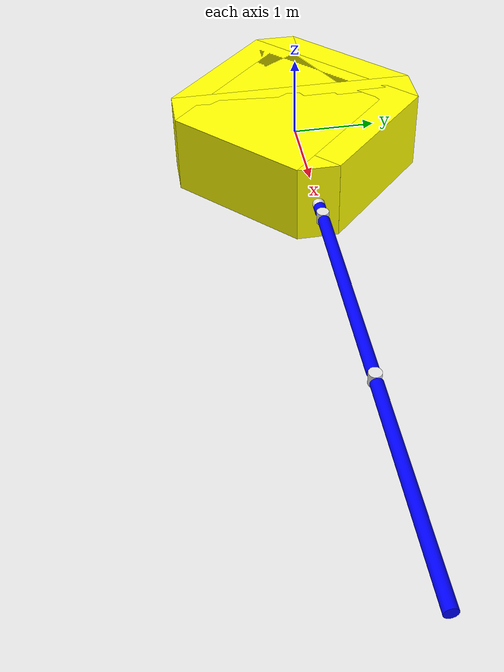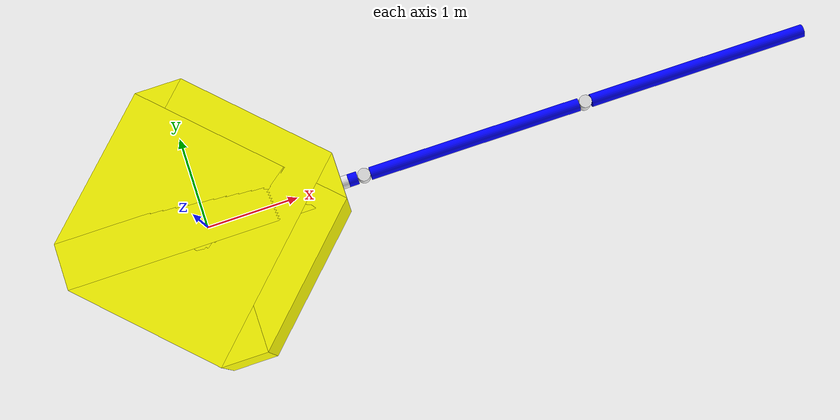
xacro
<?xml version="1.0"?>
<robot xmlns:sensor="http://playerstage.sourceforge.net/gazebo/xmlschema/#sensor"
       xmlns:controller="http://playerstage.sourceforge.net/gazebo/xmlschema/#controller"
       xmlns:interface="http://playerstage.sourceforge.net/gazebo/xmlschema/#interface"
       xmlns:xacro="http://ros.org/wiki/xacro"
       name="chaser"
>
  <!-- include macros -->
  <xacro:include filename="$(find getit_robot_gazebo)/urdf/chaser/common.xacro" />
  <xacro:include filename="$(find getit_robot_gazebo)/urdf/chaser/properties.urdf.xacro" />
  <xacro:include filename="$(find getit_robot_gazebo)/urdf/chaser/base/base.urdf.xacro" />
  <xacro:include filename="$(find getit_robot_gazebo)/urdf/chaser/arm/arm.urdf.xacro" />
  <xacro:include filename="$(find getit_robot_gazebo)/urdf/chaser/base_sub/base_sub.urdf.xacro" />

  <!-- compostion of the robot -->
  <xacro:base name="base"/>
  <xacro:arm name="arm" parent="base_link"/>
  <xacro:base_sub name="base_sub" parent="base_link"/>

  <!-- define color -->
  <material name="red">
    <color rgba="1.0 0.0 0.0 1.0"/>
  </material>

  <material name="blue">
    <color rgba="0.0 0.0 1.0 1.0"/>
  </material>

  <material name="yellow">
    <color rgba="1.0 1.0 0.0 1.0"/>
  </material>

  <material name="gray">
    <color rgba="0.9 0.9 0.9 1.0"/>
  </material>

</robot>

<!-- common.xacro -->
<robot xmlns:sensor="http://playerstage.sourceforge.net/gazebo/xmlschema/#sensor"
       xmlns:controller="http://playerstage.sourceforge.net/gazebo/xmlschema/#controller"
       xmlns:interface="http://playerstage.sourceforge.net/gazebo/xmlschema/#interface"
       xmlns:xacro="http://ros.org/wiki/xacro"
>

  <!-- common properties -->
  <xacro:property name="PI" value="3.1415926535897931"/>

  <!-- see https://secure.wikimedia.org/wikipedia/en/wiki/List_of_moment_of_inertia_tensors -->
  <xacro:macro name="sphere_inertial" params="radius mass *origin">
    <inertial>
      <mass value="${mass}" />
      <xacro:insert_block name="origin" />
      <inertia ixx="${0.4 * mass * radius * radius}" ixy="0.0" ixz="0.0"
        iyy="${0.4 * mass * radius * radius}" iyz="0.0"
        izz="${0.4 * mass * radius * radius}" />
    </inertial>
  </xacro:macro>

  <xacro:macro name="cylinder_inertial" params="radius length mass *origin">
    <inertial>
      <mass value="${mass}" />
      <xacro:insert_block name="origin" />
      <inertia ixx="${0.0833333 * mass * (3 * radius * radius + length * length)}" ixy="0.0" ixz="0.0"
        iyy="${0.0833333 * mass * (3 * radius * radius + length * length)}" iyz="0.0"
        izz="${0.5 * mass * radius * radius}" />
    </inertial>
  </xacro:macro>

  <xacro:macro name="box_inertial" params="x y z mass *origin">
    <inertial>
      <mass value="${mass}" />
      <xacro:insert_block name="origin" />
      <inertia ixx="${0.0833333 * mass * (y*y + z*z)}" ixy="0.0" ixz="0.0"
        iyy="${0.0833333 * mass * (x*x + z*z)}" iyz="0.0"
        izz="${0.0833333 * mass * (x*x + y*y)}" />
    </inertial>
  </xacro:macro>

  <xacro:macro name="spherical_cap_inertial" params="r h mass *origin">
    <inertial>
      <mass value="${mass}" />
      <xacro:insert_block name="origin" />
      <inertia ixx="${(-3*h*h*h/20+3*h*h*r/4-4*h*r*r/3+r*r*r)*3*mass/(3*r-h)+(3/4*(h-2*r)*(h-2*r)/(3*r-h))*(3/4*(h-2*r)*(h-2*r)/(3*r-h))}" ixy="0.0" ixz="0.0"
        iyy="${(-3*h*h*h/20+3*h*h*r/4-4*h*r*r/3+r*r*r)*3*mass/(3*r-h)+(3/4*(h-2*r)*(h-2*r)/(3*r-h))*(3/4*(h-2*r)*(h-2*r)/(3*r-h))}" iyz="0.0"
        izz="${mass*h/(10*(3*r-h))*(3*h*h-15*h*r+20*r*r)}" />
      <origin></origin>
    </inertial>
  </xacro:macro>

  <xacro:macro name="hollow_spherical_cap_inertial" params="r h t mass *origin">
    <inertial>
      <mass value="${mass}" />
      <xacro:insert_block name="origin" />
      <inertia ixx="${mass/20*(20*h*h*h*r-10*h*h*h*t-60*h*h*r*r+30*h*h*r*t+120*h*r*r*r-120*h*r*r*t+60*h*r*t*t-15*h*t*t*t-60*r*r*r*t+100*r*r*t*t-65*r*t*t*t+16*t*t*t*t)/(2*t*t*-3*r*t-3*h*t+6*h*r)+(3/4*(t-2*r)*(2*r*r-4*r*r+2*r*t-t*t)/(6*r*r-3*r*t-3*r*t+2*t*t))*(3/4*(t-2*r)*(2*r*r-4*r*r+2*r*t-t*t)/(6*r*r-3*r*t-3*r*t+2*t*t))}" ixy="0.0" ixz="0.0"
        iyy="${mass/20*(20*h*h*h*r-10*h*h*h*t-60*h*h*r*r+30*h*h*r*t+120*h*r*r*r-120*h*r*r*t+60*h*r*t*t-15*h*t*t*t-60*r*r*r*t+100*r*r*t*t-65*r*t*t*t+16*t*t*t*t)/(2*t*t*-3*r*t-3*h*t+6*h*r)+(3/4*(t-2*r)*(2*r*r-4*r*r+2*r*t-t*t)/(6*r*r-3*r*t-3*r*t+2*t*t))*(3/4*(t-2*r)*(2*r*r-4*r*r+2*r*t-t*t)/(6*r*r-3*r*t-3*r*t+2*t*t))}" iyz="0.0"
        izz="${mass/(10*(2*t*t-3*r*t-3*h*t+6*h*r))*(-20*h*h*h*r+10*h*h*h*t+60*h*h*r*r-30*h*h*r*t-60*h*r*r*t+60*h*r*t*t-15*h*t*t*t+20*r*r*t*t-25*r*t*t*t+8*t*t*t*t)}" />
    </inertial>
  </xacro:macro>

  <xacro:macro name="default_inertial">
    <inertial>
      <mass value="0.01"/>
      <origin xyz="0 0 0"/>
      <inertia ixx="0.001" ixy="0.0" ixz="0.0" iyy="0.001" iyz="0.0" izz="0.001" />
    </inertial>
  </xacro:macro>
</robot>

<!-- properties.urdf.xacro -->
<robot xmlns:sensor="http://playerstage.sourceforge.net/gazebo/xmlschema/#sensor"
       xmlns:controller="http://playerstage.sourceforge.net/gazebo/xmlschema/#controller"
       xmlns:interface="http://playerstage.sourceforge.net/gazebo/xmlschema/#interface"
       xmlns:xacro="http://ros.org/wiki/xacro"
>
  <!-- include common properties -->
  <xacro:include filename="$(find getit_robot_gazebo)/urdf/chaser/common.xacro" />

  <!-- topic properties -->
  <xacro:property name="chaser_cog_topic" value="/Robot_1/pose"/>

  <!-- base properties -->
  <xacro:property name="base_x_length" value="3.0"/>
  <xacro:property name="base_y_length" value="0.4998"/>
  <xacro:property name="base_z_length" value="1.0"/>
  <xacro:property name="base_mass" value="2000.0"/>
  <xacro:property name="base_inertia_lx" value="1400.0"/>
  <xacro:property name="base_inertia_ly" value="1400.0"/>
  <xacro:property name="base_inertia_lz" value="2040.0"/>

  <!-- arm link1 properties -->
  <xacro:property name="arm_link1_length" value="0.25"/>
  <xacro:property name="arm_link1_radius" value="0.07"/>
  <xacro:property name="arm_link1_mass" value="20.0"/>
  <xacro:property name="arm_link1_inertia_lx" value="0.10"/>
  <xacro:property name="arm_link1_inertia_ly" value="0.10"/>
  <xacro:property name="arm_link1_inertia_lz" value="0.10"/>

  <!-- arm link2 properties -->
  <xacro:property name="arm_link2_length" value="2.5"/>
  <xacro:property name="arm_link2_radius" value="0.07"/>
  <xacro:property name="arm_link2_mass" value="50.0"/>
  <xacro:property name="arm_link2_inertia_lx" value="26.0"/>
  <xacro:property name="arm_link2_inertia_ly" value="26.0"/>
  <xacro:property name="arm_link2_inertia_lz" value="0.25"/>

  <!-- arm link3 properties -->
  <xacro:property name="arm_link3_length" value="2.5"/>
  <xacro:property name="arm_link3_radius" value="0.07"/>
  <xacro:property name="arm_link3_mass" value="50.0"/>
  <xacro:property name="arm_link3_inertia_lx" value="26.0"/>
  <xacro:property name="arm_link3_inertia_ly" value="26.0"/>
  <xacro:property name="arm_link3_inertia_lz" value="0.25"/>

  <!-- arm joint properties -->
  <xacro:property name="arm_joint_link_length" value="0.15"/>
  <xacro:property name="arm_joint_link_radius" value="0.07"/>

  <!-- arm initial position -->
  <xacro:property name="arm_joint_1_position" value="0"/>
  <xacro:property name="arm_joint_2_position" value="${PI*3.0/4.0}"/>
  <xacro:property name="arm_joint_3_position" value="${PI/2.0}"/>

  <!-- arm limit position -->
  <xacro:property name="arm_joint2_limit_lower" value="${-PI*3.0/4.0}"/>
  <xacro:property name="arm_joint2_limit_upper" value="${PI*3.0/4.0}"/>
  <xacro:property name="arm_joint3_limit_lower" value="${-PI/2.0}"/>
  <xacro:property name="arm_joint3_limit_upper" value="${PI/2.0}"/>
  <xacro:property name="arm_joint_limit_effort" value="100"/>
  <xacro:property name="arm_joint_limit_velocity" value="100"/>

</robot>

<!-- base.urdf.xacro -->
<robot xmlns:sensor="http://playerstage.sourceforge.net/gazebo/xmlschema/#sensor"
       xmlns:controller="http://playerstage.sourceforge.net/gazebo/xmlschema/#controller"
       xmlns:interface="http://playerstage.sourceforge.net/gazebo/xmlschema/#interface"
       xmlns:xacro="http://ros.org/wiki/xacro"
>
  <xacro:include filename="$(find getit_robot_gazebo)/urdf/chaser/common.xacro" />
  <xacro:include filename="$(find getit_robot_gazebo)/urdf/chaser/properties.urdf.xacro" />
  <xacro:include filename="$(find getit_robot_gazebo)/urdf/chaser/base/base.gazebo.xacro" />
  <xacro:include filename="$(find getit_robot_gazebo)/urdf/chaser/base/base.transmission.xacro" />

  <!-- Base Link -->
  <xacro:macro name="base" params="name">
    <link name="${name}_link">
      <visual>
        <origin xyz="0 0 0" rpy="0 0 0"/>
        <geometry>
          <box size="${base_x_length} ${base_y_length} ${base_z_length}"/>
        </geometry>
        <material name="yellow"/>
      </visual>
      <collision>
        <origin xyz="0 0 0" rpy="0 0 0"/>
        <geometry>
          <box size="${base_x_length} ${base_y_length} ${base_z_length}"/>
        </geometry>
      </collision>
      <inertial>
        <mass value="${base_mass}"/>
        <origin xyz="0.0 0.0 0.0"/>
        <inertia ixx="${base_inertia_lx}" ixy="0.0" ixz="0.0"
             iyy="${base_inertia_ly}" iyz="0.0"
             izz="${base_inertia_lz}"/>
      </inertial>
    </link>

    <xacro:base_link_gazebo name="${name}_link"/>

    <!-- Chaser Controller -->
    <xacro:chaser_controller robot_name="chaser"/>

    <!-- CoG Pose Publisher -->
    <xacro:cog_pose_publisher robot_name="chaser" topic_name="${chaser_cog_topic}" link_name="${name}_link"/>

  </xacro:macro>
</robot>

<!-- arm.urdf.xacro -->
<robot xmlns:sensor="http://playerstage.sourceforge.net/gazebo/xmlschema/#sensor"
       xmlns:controller="http://playerstage.sourceforge.net/gazebo/xmlschema/#controller"
       xmlns:interface="http://playerstage.sourceforge.net/gazebo/xmlschema/#interface"
       xmlns:xacro="http://ros.org/wiki/xacro"
>
  <!-- include macros -->
  <xacro:include filename="$(find getit_robot_gazebo)/urdf/chaser/common.xacro" />
  <xacro:include filename="$(find getit_robot_gazebo)/urdf/chaser/properties.urdf.xacro" />
  <xacro:include filename="$(find getit_robot_gazebo)/urdf/chaser/arm/arm.gazebo.xacro" />
  <xacro:include filename="$(find getit_robot_gazebo)/urdf/chaser/arm/arm.transmission.xacro" />

  <!-- include sensors -->
  <xacro:include filename="$(find getit_robot_gazebo)/urdf/chaser/sensors/ft_sensor.urdf.xacro" />

  <xacro:macro name="arm" params="name parent">

    <!-- arm link -->
    <xacro:arm_link1 name="${name}_1_link">
      <origin xyz="${arm_link1_length/2} 0 0" rpy="0 ${pi/2} 0"/>
    </xacro:arm_link1>

    <xacro:arm_link2 name="${name}_2_link">
      <origin xyz="${arm_link2_length/2} 0 0" rpy="0 ${pi/2} 0"/>
    </xacro:arm_link2>

    <xacro:arm_link3 name="${name}_3_link">
      <origin xyz="${arm_link3_length/2 + arm_joint_link_radius/2} 0 0" rpy="0 ${pi/2} 0"/>
    </xacro:arm_link3>

    <!-- joints for arm link -->
    <joint name="${name}_joint_1" type="continuous">
      <origin xyz="${base_x_length/2} 0 0" rpy="0 0 0"/>
      <parent link="${parent}"/>
      <child  link="${name}_1_link"/>
      <axis xyz="1 0 0"/>
    </joint>

    <joint name="${name}_joint_2" type="revolute">
      <origin xyz="${arm_link1_length} 0 0" rpy="0 0 0"/>
      <parent link="${name}_1_link"/>
      <child  link="${name}_2_link"/>
      <axis xyz="0 0 1"/>
      <limit lower="${arm_joint2_limit_lower}" upper="${arm_joint2_limit_upper}" effort="${arm_joint_limit_effort}" velocity="${arm_joint_limit_velocity}"/>
    </joint>

    <joint name="${name}_joint_3" type="revolute">
      <origin xyz="${arm_link2_length} 0 0" rpy="0 0 0"/>
      <parent link="${name}_2_link"/>
      <child  link="${name}_3_link"/>
      <axis xyz="0 0 1"/>
      <limit lower="${arm_joint3_limit_lower}" upper="${arm_joint3_limit_upper}" effort="${arm_joint_limit_effort}" velocity="${arm_joint_limit_velocity}"/>
    </joint>

    <!-- visualized joint links -->
    <xacro:arm_joint_link name="${name}_visualized_joint_1_link">
      <origin xyz="0 0 0" rpy="0 ${pi/2} 0"/>
    </xacro:arm_joint_link>

    <xacro:arm_joint_link name="${name}_visualized_joint_2_link">
      <origin xyz="0 0 0" rpy="0 ${pi} 0"/>
    </xacro:arm_joint_link>

    <xacro:arm_joint_link name="${name}_visualized_joint_3_link">
      <origin xyz="0 0 0" rpy="0 ${pi} 0"/>
    </xacro:arm_joint_link>

    <!-- joints for visualized joint link -->
    <joint name="${name}_visualized_joint_1" type="fixed">
      <origin xyz="${base_x_length/2} 0 0" rpy="0 0 0"/>
      <parent link="${parent}"/>
      <child  link="${name}_visualized_joint_1_link"/>
      <axis xyz="0 0 1"/>
    </joint>

    <joint name="${name}_visualized_joint_2" type="fixed">
      <origin xyz="${arm_link1_length} 0 0" rpy="0 0 0"/>
      <parent link="${name}_1_link"/>
      <child  link="${name}_visualized_joint_2_link"/>
      <axis xyz="0 0 1"/>
    </joint>

    <joint name="${name}_visualized_joint_3" type="fixed">
      <origin xyz="${arm_link2_length} 0 0" rpy="0 0 0"/>
      <parent link="${name}_2_link"/>
      <child  link="${name}_visualized_joint_3_link"/>
      <axis xyz="0 0 1"/>
    </joint>

  </xacro:macro>

  <!-- arm link1 -->
  <xacro:macro name="arm_link1" params="name *origin">

    <link name="${name}">
      <visual>
        <xacro:insert_block name="origin"/>
        <geometry>
          <cylinder radius="${arm_link1_radius}" length="${arm_link1_length - arm_joint_link_length/2 - arm_joint_link_radius}"/>
        </geometry>
        <material name="blue"/>
      </visual>
      <inertial>
        <xacro:insert_block name="origin"/>
        <mass value="${arm_link1_mass}"/>
        <inertia ixx="${arm_link1_inertia_lx}" ixy="0" ixz="0"
                 iyy="${arm_link1_inertia_ly}" iyz="0"
                 izz="${arm_link1_inertia_lz}"/>
      </inertial>
    </link>
    <xacro:arm_link1_gazebo name="${name}"/>

  </xacro:macro>

  <!-- arm link2 -->
  <xacro:macro name="arm_link2" params="name *origin">

    <link name="${name}">
      <visual>
        <xacro:insert_block name="origin"/>
        <geometry>
          <cylinder radius="${arm_link2_radius}" length="${arm_link2_length - 2*arm_joint_link_radius}"/>
        </geometry>
        <material name="blue"/>
      </visual>
      <inertial>
        <xacro:insert_block name="origin"/>
        <mass value="${arm_link2_mass}"/>
        <inertia ixx="${arm_link2_inertia_lx}" ixy="0" ixz="0"
                 iyy="${arm_link2_inertia_ly}" iyz="0"
                 izz="${arm_link2_inertia_lz}"/>
      </inertial>
    </link>
    <xacro:arm_link2_gazebo name="${name}"/>

  </xacro:macro>

  <!-- arm link3 -->
  <xacro:macro name="arm_link3" params="name *origin">

    <link name="${name}">
      <visual>
        <xacro:insert_block name="origin"/>
        <geometry>
          <cylinder radius="${arm_link3_radius}" length="${arm_link3_length - arm_joint_link_radius}"/>
        </geometry>
        <material name="blue"/>
      </visual>
      <inertial>
        <xacro:insert_block name="origin"/>
        <mass value="${arm_link3_mass}"/>
        <inertia ixx="${arm_link3_inertia_lx}" ixy="0" ixz="0"
                 iyy="${arm_link3_inertia_ly}" iyz="0"
                 izz="${arm_link3_inertia_lz}"/>
      </inertial>
    </link>
    <xacro:arm_link3_gazebo name="${name}"/>

  </xacro:macro>

  <!-- visualized joint link -->
  <xacro:macro name="arm_joint_link" params="name *origin">

    <link name="${name}">
      <visual>
        <xacro:insert_block name="origin" />
        <geometry>
          <cylinder radius="${arm_joint_link_radius}" length="${arm_joint_link_length}"/>
        </geometry>
        <material name="gray"/>
      </visual>
    </link>
    <xacro:arm_joint_link_gazebo name="${name}"/>

  </xacro:macro>

</robot>

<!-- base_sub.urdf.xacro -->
<robot xmlns:sensor="http://playerstage.sourceforge.net/gazebo/xmlschema/#sensor"
       xmlns:controller="http://playerstage.sourceforge.net/gazebo/xmlschema/#controller"
       xmlns:interface="http://playerstage.sourceforge.net/gazebo/xmlschema/#interface"
       xmlns:xacro="http://ros.org/wiki/xacro"
>
  <!-- include macros -->
  <xacro:include filename="$(find getit_robot_gazebo)/urdf/chaser/common.xacro" />
  <xacro:include filename="$(find getit_robot_gazebo)/urdf/chaser/properties.urdf.xacro" />
  <xacro:include filename="$(find getit_robot_gazebo)/urdf/chaser/base_sub/base_sub.gazebo.xacro" />
  <xacro:include filename="$(find getit_robot_gazebo)/urdf/chaser/base_sub/base_sub.transmission.xacro" />

  <xacro:macro name="base_sub" params="name parent">

    <!-- base_sub link1 -->
    <xacro:base_sub_link1 name="${name}_link1">
      <origin xyz="0 0 0" rpy="0 0 ${PI/2}"/>
    </xacro:base_sub_link1>
    <joint name="${name}_joint1" type="fixed">
      <origin xyz="0 0 0" rpy="0 0 0"/>
      <parent link="${parent}"/>
      <child  link="${name}_link1"/>
      <axis xyz="0 1 0"/>
    </joint>

    <!-- base_sub link2_1 -->
    <xacro:base_sub_link2 name="${name}_link2_1">
      <origin xyz="0 0 0" rpy="0 0 ${-PI/4}"/>
    </xacro:base_sub_link2>
    <joint name="${name}_joint2_1" type="fixed">
      <origin xyz="0 0 0" rpy="0 0 0"/>
      <parent link="${parent}"/>
      <child  link="${name}_link2_1"/>
      <axis xyz="0 1 0"/>
    </joint>

    <!-- base_sub link2_2 -->
    <xacro:base_sub_link2 name="${name}_link2_2">
      <origin xyz="0 0 0" rpy="0 0 ${PI/4}"/>
    </xacro:base_sub_link2>
    <joint name="${name}_joint2_2" type="fixed">
      <origin xyz="0 0 0" rpy="0 0 0"/>
      <parent link="${parent}"/>
      <child  link="${name}_link2_2"/>
      <axis xyz="0 1 0"/>
    </joint>

  </xacro:macro>

  <xacro:macro name="base_sub_link1" params="name *origin">

    <link name="${name}">
      <visual>
        <xacro:insert_block name="origin"/>
        <geometry>
          <box size="${base_x_length} ${base_y_length} ${base_z_length}"/>
        </geometry>
        <material name="yellow"/>
      </visual>
      <collision>
        <xacro:insert_block name="origin"/>
        <geometry>
          <box size="${base_x_length} ${base_y_length} ${base_z_length}"/>
        </geometry>
      </collision>
    </link>
    <xacro:base_sub_link1_gazebo name="${name}"/>

  </xacro:macro>

  <xacro:macro name="base_sub_link2" params="name *origin">

    <link name="${name}">
      <visual>
        <xacro:insert_block name="origin"/>
        <geometry>
          <box size="${2.4752} ${1.7682} ${base_z_length}"/>
        </geometry>
        <material name="yellow"/>
      </visual>
      <collision>
        <xacro:insert_block name="origin"/>
        <geometry>
          <box size="${2.4752} ${1.7682} ${base_z_length}"/>
        </geometry>
      </collision>
    </link>
    <xacro:base_sub_link2_gazebo name="${name}"/>

  </xacro:macro>

</robot>
